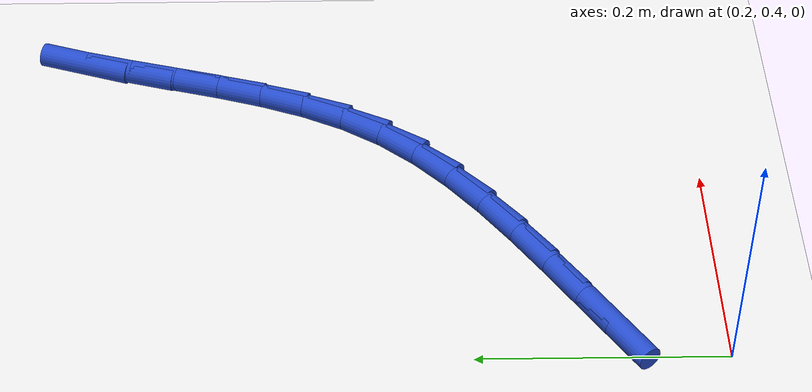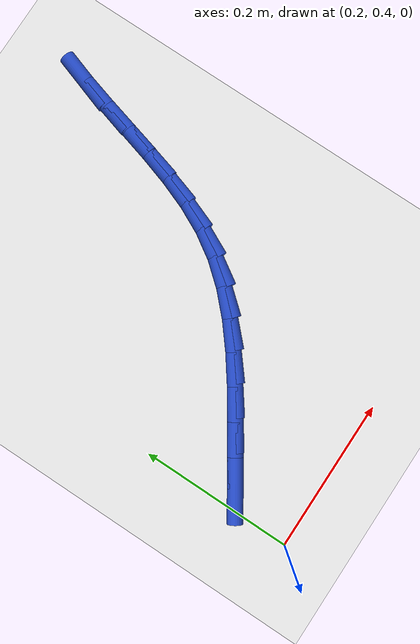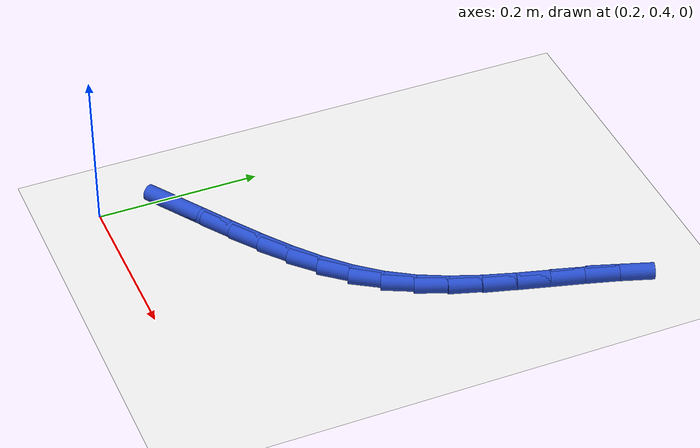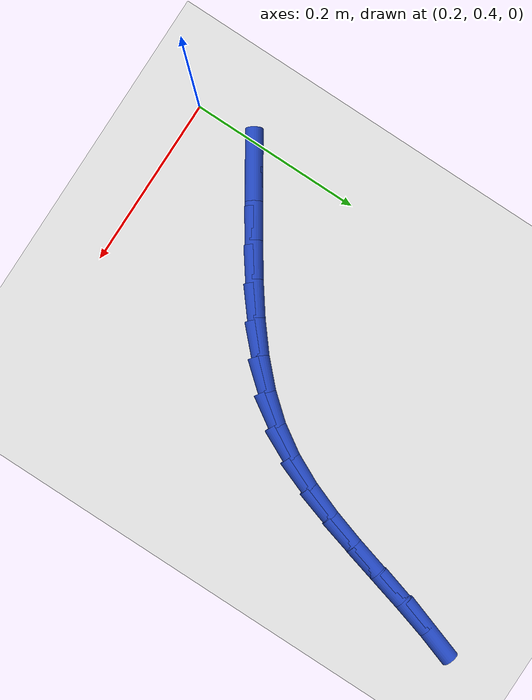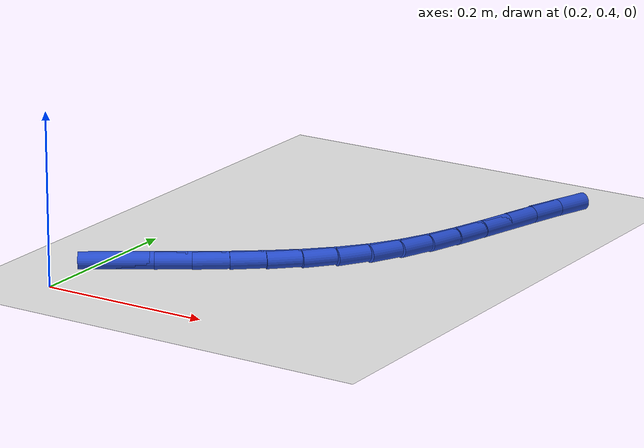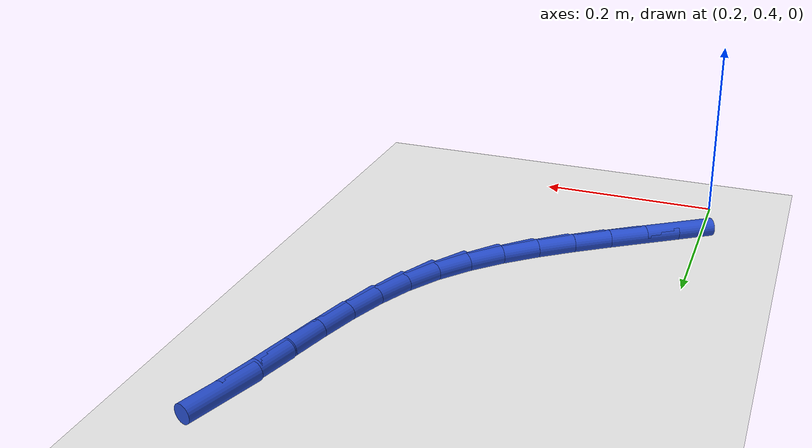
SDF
<sdf version="1.6">
 <world name="default">
  <model name="ground_plane">
   <static>1</static>
   <link name="link">
    <collision name="collision">
     <geometry><plane><normal>0 0 1</normal><size>100 100</size></plane></geometry>
     <surface><friction><ode><mu>100</mu><mu2>50</mu2></ode></friction></surface>
    </collision>
    <visual name="visual">
     <cast_shadows>0</cast_shadows>
     <geometry><plane><normal>0 0 1</normal><size>100 100</size></plane></geometry>
     <material>
      <script><uri>file://media/materials/scripts/gazebo.material</uri><name>Gazebo/WhiteGlow</name></script>
     </material>
    </visual>
   </link>
  </model>
  <model name="line">
   <link name="link_14">
    <pose>0.2231036912033186 0.4874753516100416 0.01 0 1.57 0.5770730301367993</pose>
    <collision name="collision">
     <geometry><cylinder><radius>0.01</radius><length>0.08</length></cylinder></geometry>
    </collision>
    <visual name="visual">
     <material>
      <script><name>Gazebo/Blue</name><uri>file://media/materials/scripts/gazebo.material</uri></script>
     </material>
     <geometry><cylinder><radius>0.01</radius><length>0.08</length></cylinder></geometry>
    </visual>
   </link>
   <link name="link_15">
    <pose>0.25874669538332645 0.5106787008484259 0.01 0 1.57 0.5763001790471307</pose>
    <collision name="collision">
     <geometry><cylinder><radius>0.01</radius><length>0.08</length></cylinder></geometry>
    </collision>
    <visual name="visual">
     <material>
      <script><name>Gazebo/Blue</name><uri>file://media/materials/scripts/gazebo.material</uri></script>
     </material>
     <geometry><cylinder><radius>0.01</radius><length>0.08</length></cylinder></geometry>
    </visual>
   </link>
   <link name="link_16">
    <pose>0.2943748588025686 0.5338332040712436 0.01 0 1.57 0.5934724999072294</pose>
    <collision name="collision">
     <geometry><cylinder><radius>0.01</radius><length>0.08</length></cylinder></geometry>
    </collision>
    <visual name="visual">
     <material>
      <script><name>Gazebo/Blue</name><uri>file://media/materials/scripts/gazebo.material</uri></script>
     </material>
     <geometry><cylinder><radius>0.01</radius><length>0.08</length></cylinder></geometry>
    </visual>
   </link>
   <link name="link_17">
    <pose>0.32927671916165663 0.5573778812592254 0.01 0 1.57 0.6295063294615603</pose>
    <collision name="collision">
     <geometry><cylinder><radius>0.01</radius><length>0.08</length></cylinder></geometry>
    </collision>
    <visual name="visual">
     <material>
      <script><name>Gazebo/Blue</name><uri>file://media/materials/scripts/gazebo.material</uri></script>
     </material>
     <geometry><cylinder><radius>0.01</radius><length>0.08</length></cylinder></geometry>
    </visual>
   </link>
   <link name="link_18">
    <pose>0.3627408141612025 0.5817517523931025 0.01 0 1.57 0.6861278292938195</pose>
    <collision name="collision">
     <geometry><cylinder><radius>0.01</radius><length>0.08</length></cylinder></geometry>
    </collision>
    <visual name="visual">
     <material>
      <script><name>Gazebo/Blue</name><uri>file://media/materials/scripts/gazebo.material</uri></script>
     </material>
     <geometry><cylinder><radius>0.01</radius><length>0.08</length></cylinder></geometry>
    </visual>
   </link>
   <link name="link_19">
    <pose>0.3940556815018181 0.6073938374536062 0.01 0 1.57 0.7656016604716777</pose>
    <collision name="collision">
     <geometry><cylinder><radius>0.01</radius><length>0.08</length></cylinder></geometry>
    </collision>
    <visual name="visual">
     <material>
      <script><name>Gazebo/Blue</name><uri>file://media/materials/scripts/gazebo.material</uri></script>
     </material>
     <geometry><cylinder><radius>0.01</radius><length>0.08</length></cylinder></geometry>
    </visual>
   </link>
   <link name="link_20">
    <pose>0.42250985888411524 0.6347431564214678 0.01 0 1.57 0.8700382645957109</pose>
    <collision name="collision">
     <geometry><cylinder><radius>0.01</radius><length>0.08</length></cylinder></geometry>
    </collision>
    <visual name="visual">
     <material>
      <script><name>Gazebo/Blue</name><uri>file://media/materials/scripts/gazebo.material</uri></script>
     </material>
     <geometry><cylinder><radius>0.01</radius><length>0.08</length></cylinder></geometry>
    </visual>
   </link>
   <link name="link_21">
    <pose>0.4473918840087051 0.6642387292774177 0.01 0 1.57 0.9972930796232857</pose>
    <collision name="collision">
     <geometry><cylinder><radius>0.01</radius><length>0.08</length></cylinder></geometry>
    </collision>
    <visual name="visual">
     <material>
      <script><name>Gazebo/Blue</name><uri>file://media/materials/scripts/gazebo.material</uri></script>
     </material>
     <geometry><cylinder><radius>0.01</radius><length>0.08</length></cylinder></geometry>
    </visual>
   </link>
   <link name="link_22">
    <pose>0.4680821518128771 0.6962708644134924 0.01 0 1.57 1.1159063662617592</pose>
    <collision name="collision">
     <geometry><cylinder><radius>0.01</radius><length>0.08</length></cylinder></geometry>
    </collision>
    <visual name="visual">
     <material>
      <script><name>Gazebo/Blue</name><uri>file://media/materials/scripts/gazebo.material</uri></script>
     </material>
     <geometry><cylinder><radius>0.01</radius><length>0.08</length></cylinder></geometry>
    </visual>
   </link>
   <link name="link_23">
    <pose>0.48492944581038877 0.7307163369635842 0.01 0 1.57 1.205464749394915</pose>
    <collision name="collision">
     <geometry><cylinder><radius>0.01</radius><length>0.08</length></cylinder></geometry>
    </collision>
    <visual name="visual">
     <material>
      <script><name>Gazebo/Blue</name><uri>file://media/materials/scripts/gazebo.material</uri></script>
     </material>
     <geometry><cylinder><radius>0.01</radius><length>0.08</length></cylinder></geometry>
    </visual>
   </link>
   <link name="link_24">
    <pose>0.49886312130800875 0.7671440467606012 0.01 0 1.57 1.265749019838712</pose>
    <collision name="collision">
     <geometry><cylinder><radius>0.01</radius><length>0.08</length></cylinder></geometry>
    </collision>
    <visual name="visual">
     <material>
      <script><name>Gazebo/Blue</name><uri>file://media/materials/scripts/gazebo.material</uri></script>
     </material>
     <geometry><cylinder><radius>0.01</radius><length>0.08</length></cylinder></geometry>
    </visual>
   </link>
   <link name="link_25">
    <pose>0.5108204048673011 0.8051187195370761 0.01 0 1.57 1.2984060600359086</pose>
    <collision name="collision">
     <geometry><cylinder><radius>0.01</radius><length>0.08</length></cylinder></geometry>
    </collision>
    <visual name="visual">
     <material>
      <script><name>Gazebo/Blue</name><uri>file://media/materials/scripts/gazebo.material</uri></script>
     </material>
     <geometry><cylinder><radius>0.01</radius><length>0.08</length></cylinder></geometry>
    </visual>
   </link>
   <link name="link_26">
    <pose>0.5217385230498298 0.8442050810255421 0.01 0 1.57 1.3052048329932449</pose>
    <collision name="collision">
     <geometry><cylinder><radius>0.01</radius><length>0.08</length></cylinder></geometry>
    </collision>
    <visual name="visual">
     <material>
      <script><name>Gazebo/Blue</name><uri>file://media/materials/scripts/gazebo.material</uri></script>
     </material>
     <geometry><cylinder><radius>0.01</radius><length>0.08</length></cylinder></geometry>
    </visual>
   </link>
   <link name="link_27">
    <pose>0.5325547024171587 0.883967856958531 0.01 0 1.57 1.2873787360145554</pose>
    <collision name="collision">
     <geometry><cylinder><radius>0.01</radius><length>0.08</length></cylinder></geometry>
    </collision>
    <visual name="visual">
     <material>
      <script><name>Gazebo/Blue</name><uri>file://media/materials/scripts/gazebo.material</uri></script>
     </material>
     <geometry><cylinder><radius>0.01</radius><length>0.08</length></cylinder></geometry>
    </visual>
   </link>
   <link name="link_28">
    <pose>0.5442061695308522 0.9239717730685761 0.01 0 1.57 1.2455670459733883</pose>
    <collision name="collision">
     <geometry><cylinder><radius>0.01</radius><length>0.08</length></cylinder></geometry>
    </collision>
    <visual name="visual">
     <material>
      <script><name>Gazebo/Blue</name><uri>file://media/materials/scripts/gazebo.material</uri></script>
     </material>
     <geometry><cylinder><radius>0.01</radius><length>0.08</length></cylinder></geometry>
    </visual>
   </link>
  </model>
 </world>
</sdf>
